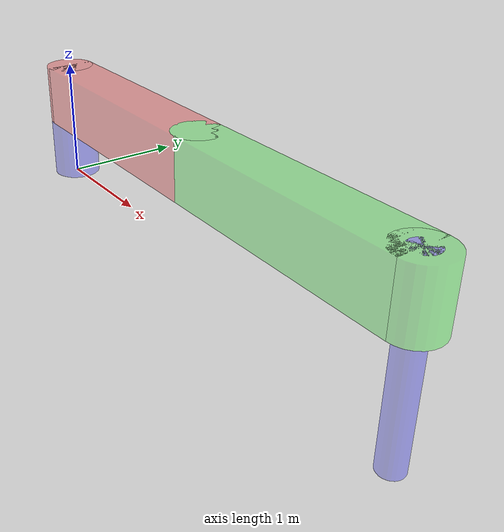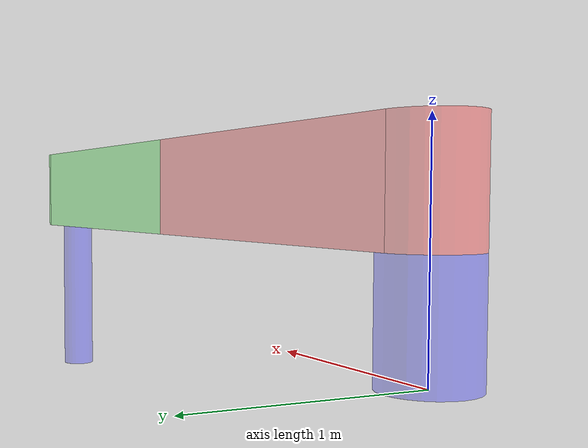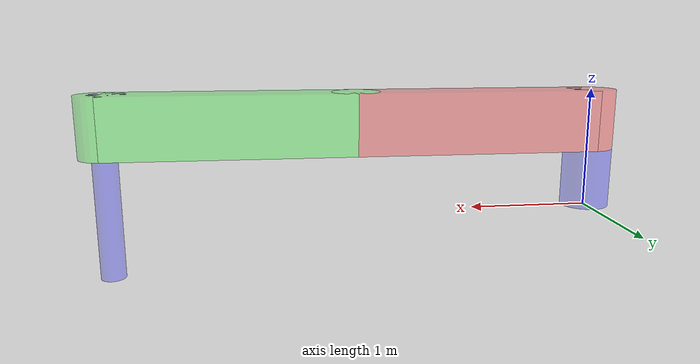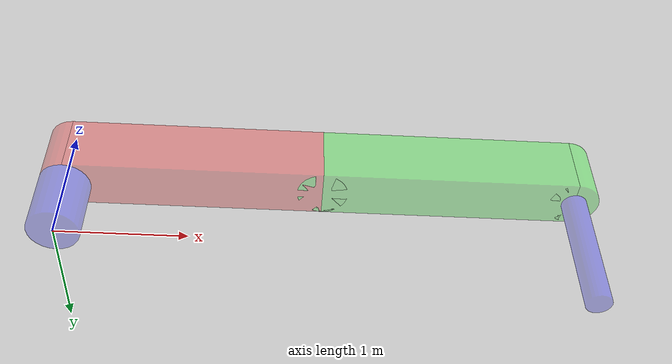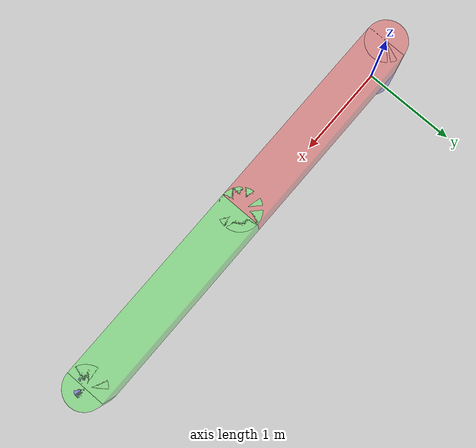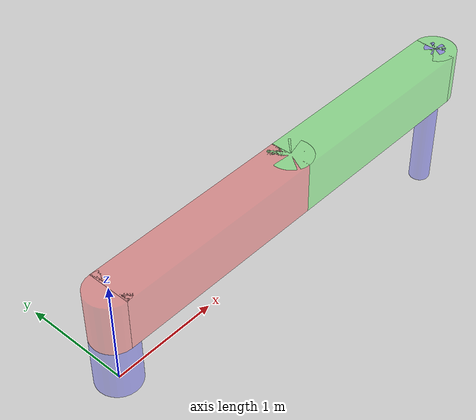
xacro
<?xml version="1.0"?>
<robot xmlns:xacro="http://www.ros.org/wiki/xacro" name="scara_robot">

  <xacro:property name="height_cylinders" value="0.5" />
  <xacro:property name="height_cylinder_EE" value="1.5" />
  <xacro:property name="radius_cylinders" value="0.2" />
  <xacro:property name="length_box" value="2.0" />
  <xacro:property name="width_box" value="0.4" />

<!--  Materials definition-->
  <material name="blue">
    <color rgba="0 0 1 0.3"/>
  </material>
  <material name="green">
    <color rgba="0 1 0 0.3"/>
  </material>
  <material name="red">
    <color rgba="1 0 0 0.3"/>
  </material>
  <material name="non_transparent_white">
    <color rgba="1 1 1 1"/>
  </material>

<!--  Base link-->
  <link name="base_link">
    <visual>
      <geometry>
        <cylinder length="${height_cylinders}" radius="${radius_cylinders}"/>
      </geometry>
      <origin xyz="0 0 ${height_cylinders/2}"/>
      <material name="blue"/>
    </visual>
  </link>

<!--  Link1-->
  <link name="link1">
    <visual>
      <geometry>
        <box size="${length_box} ${width_box} ${height_cylinders}"/>
      </geometry>
      <origin xyz="${length_box/2} 0 ${-height_cylinders/2}"/>
      <material name="red"/>
    </visual>
  </link>

  <joint name="base_link_to_link1" type="continuous">
    <parent link="base_link"/>
    <child link="link1"/>
    <axis xyz="0 0 1" />
    <origin xyz="0 0 ${height_cylinders*2}" />
  </joint>

<!--  Link1 visual-->
  <link name="link1_visual">
    <visual>
      <geometry>
        <cylinder length="${height_cylinders}" radius="${radius_cylinders}"/>
      </geometry>
      <origin xyz="0 0 0"/>
      <material name="red"/>
    </visual>
  </link>

  <joint name="link1_to_link1_visual" type="fixed">
    <parent link="link1"/>
    <child link="link1_visual"/>
    <origin xyz="0 0 ${-height_cylinders/2}" />
  </joint>

<!--  Link2-->
  <link name="link2">
    <visual>
      <geometry>
        <box size="${length_box} ${width_box} ${height_cylinders}"/>
      </geometry>
      <origin xyz="${length_box/2} 0 ${-height_cylinders/2}"/>
      <material name="green"/>
    </visual>
  </link>

  <joint name="link1_to_link2" type="continuous">
    <parent link="link1"/>
    <child link="link2"/>
    <axis xyz="0 0 1" />
    <origin xyz="${length_box} 0 0"/>
  </joint>

<!--  Link2 visual A-->
  <link name="link2_visual_a">
    <visual>
      <geometry>
        <cylinder length="${height_cylinders}" radius="${radius_cylinders}"/>
      </geometry>
      <origin xyz="0 0 0"/>
      <material name="green"/>
    </visual>
  </link>

  <joint name="link2_to_link2_visual_a" type="fixed">
    <parent link="link2"/>
    <child link="link2_visual_a"/>
    <origin xyz="0 0 ${-height_cylinders/2}" />
  </joint>

<!--  Link2 visual B-->
  <link name="link2_visual_b">
    <visual>
      <geometry>
        <cylinder length="${height_cylinders}" radius="${radius_cylinders}"/>
      </geometry>
      <origin xyz="0 0 0"/>
      <material name="green"/>
    </visual>
  </link>

  <joint name="link2_to_link2_visual_b" type="fixed">
    <parent link="link2"/>
    <child link="link2_visual_b"/>
    <origin xyz="${length_box} 0 ${-height_cylinders/2}" />
  </joint>

<!--  EE Link-->
  <link name="EE_link">
    <visual>
      <geometry>
        <cylinder length="${height_cylinder_EE}" radius="${radius_cylinders/2}"/>
      </geometry>
      <origin xyz="0 0 ${-height_cylinder_EE/2}"/>
      <material name="blue"/>
    </visual>
  </link>

  <joint name="link2_to_EE_link" type="prismatic">
    <parent link="link2"/>
    <child link="EE_link"/>
    <limit effort="1000.0" lower="${-height_cylinder_EE}" upper="${height_cylinder_EE}" velocity="0.5"/>
    <axis xyz="0 0 -1"/>
    <origin rpy="0 0 0" xyz="${length_box} 0 0"/>
  </joint>

</robot>
